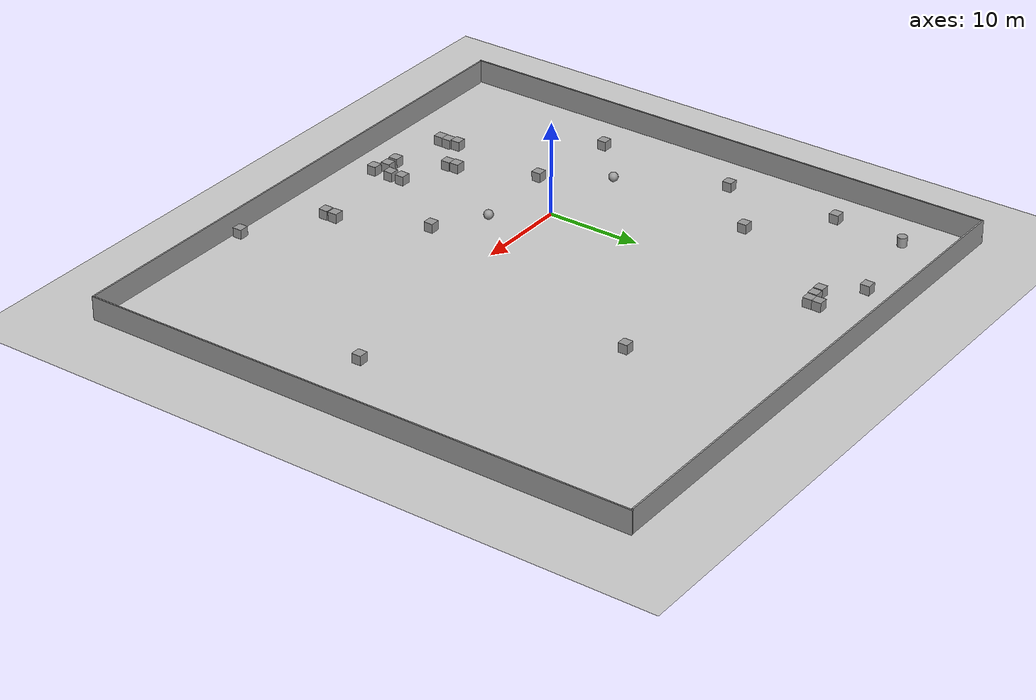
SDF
<sdf version="1.7">
 <world name="default">
  <plugin name="gazebo_ros_state" filename="libgazebo_ros_state.so"/>
  <light name="sun" type="directional">
   <pose>0 0 10 0 -0 0</pose>
   <diffuse>0.8 0.8 0.8 1</diffuse>
   <specular>0.2 0.2 0.2 1</specular>
   <attenuation>
    <range>1000</range>
    <constant>0.9</constant>
    <linear>0.01</linear>
    <quadratic>0.001</quadratic>
   </attenuation>
   <direction>-0.5 0.1 -0.9</direction>
   <spot><inner_angle>0</inner_angle><outer_angle>0</outer_angle><falloff>0</falloff></spot>
  </light>
  <model name="ground_plane">
   <static>1</static>
   <link name="link">
    <collision name="collision_collision">
     <geometry><plane><normal>0 0 1</normal><size>100 100</size></plane></geometry>
     <surface><friction><ode><mu>100</mu><mu2>50</mu2></ode></friction></surface>
    </collision>
    <visual name="visual">
     <cast_shadows>0</cast_shadows>
     <geometry><plane><normal>0 0 1</normal><size>100 100</size></plane></geometry>
     <material>
      <script><uri>file://media/materials/scripts/gazebo.material</uri><name>Gazebo/Grey</name></script>
     </material>
    </visual>
   </link>
  </model>
  <gravity>0 0 -9.81</gravity>
  <magnetic_field>6e-06 2.3e-05 -4.2e-05</magnetic_field>
  <atmosphere type="adiabatic"/>
  <physics type="ode">
   <max_step_size>0.001</max_step_size>
   <real_time_factor>1</real_time_factor>
   <real_time_update_rate>1000</real_time_update_rate>
  </physics>
  <scene><ambient>0.4 0.4 0.4 1</ambient><background>0.7 0.7 0.7 1</background><shadows>1</shadows></scene>
  <spherical_coordinates>
   <surface_model>EARTH_WGS84</surface_model>
   <latitude_deg>0</latitude_deg>
   <longitude_deg>0</longitude_deg>
   <elevation>0</elevation>
   <heading_deg>0</heading_deg>
  </spherical_coordinates>
  <model name="Untitled">
   <pose>10.7145 7.1314 -0.015294 0 -0 0</pose>
   <link name="Wall_0">
    <collision name="Wall_0_Collision_collision">
     <geometry><box><size>60 0.15 2.5</size></box></geometry>
     <pose>0 0 1.25 0 -0 0</pose>
    </collision>
    <visual name="Wall_0_Visual">
     <pose>0 0 1.25 0 -0 0</pose>
     <geometry><box><size>60 0.15 2.5</size></box></geometry>
     <material>
      <script><uri>file://media/materials/scripts/gazebo.material</uri><name>Gazebo/Grey</name></script>
      <ambient>1 1 1 1</ambient>
     </material>
     <meta><layer>0</layer></meta>
    </visual>
    <pose>-0.121886 29.8918 0 0 -0 0</pose>
   </link>
   <link name="Wall_11">
    <collision name="Wall_11_Collision_collision">
     <geometry><box><size>60 0.15 2.5</size></box></geometry>
     <pose>0 0 1.25 0 -0 0</pose>
    </collision>
    <visual name="Wall_11_Visual">
     <pose>0 0 1.25 0 -0 0</pose>
     <geometry><box><size>60 0.15 2.5</size></box></geometry>
     <material>
      <script><uri>file://media/materials/scripts/gazebo.material</uri><name>Gazebo/Grey</name></script>
      <ambient>1 1 1 1</ambient>
     </material>
     <meta><layer>0</layer></meta>
    </visual>
    <pose>30.0469 0.033205 0 0 -0 1.5708</pose>
   </link>
   <link name="Wall_7">
    <collision name="Wall_7_Collision_collision">
     <geometry><box><size>60 0.15 2.5</size></box></geometry>
     <pose>0 0 1.25 0 -0 0</pose>
    </collision>
    <visual name="Wall_7_Visual">
     <pose>0 0 1.25 0 -0 0</pose>
     <geometry><box><size>60 0.15 2.5</size></box></geometry>
     <material>
      <script><uri>file://media/materials/scripts/gazebo.material</uri><name>Gazebo/Grey</name></script>
      <ambient>1 1 1 1</ambient>
     </material>
     <meta><layer>0</layer></meta>
    </visual>
    <pose>-30.0469 -0.033202 0 0 -0 -1.5708</pose>
   </link>
   <link name="Wall_9">
    <collision name="Wall_9_Collision_collision">
     <geometry><box><size>60 0.15 2.5</size></box></geometry>
     <pose>0 0 1.25 0 -0 0</pose>
    </collision>
    <visual name="Wall_9_Visual">
     <pose>0 0 1.25 0 -0 0</pose>
     <geometry><box><size>60 0.15 2.5</size></box></geometry>
     <material>
      <script><uri>file://media/materials/scripts/gazebo.material</uri><name>Gazebo/Grey</name></script>
      <ambient>1 1 1 1</ambient>
     </material>
     <meta><layer>0</layer></meta>
    </visual>
    <pose>0.121884 -29.8918 0 0 -0 0</pose>
   </link>
   <static>1</static>
  </model>
  <model name="unit_sphere_1">
   <pose>4.31036 -4.4456 0.5 0 -0 0</pose>
   <link name="link">
    <inertial>
     <mass>1</mass>
     <inertia><ixx>0.1</ixx><ixy>0</ixy><ixz>0</ixz><iyy>0.1</iyy><iyz>0</iyz><izz>0.1</izz></inertia>
    </inertial>
    <collision name="collision_collision"><geometry><sphere><radius>0.5</radius></sphere></geometry></collision>
    <visual name="visual">
     <geometry><sphere><radius>0.5</radius></sphere></geometry>
     <material>
      <script><name>Gazebo/Grey</name><uri>file://media/materials/scripts/gazebo.material</uri></script>
     </material>
    </visual>
   </link>
  </model>
  <model name="unit_sphere_2">
   <pose>-9.12909 1.1262 0.5 0 -0 0</pose>
   <link name="link">
    <inertial>
     <mass>1</mass>
     <inertia><ixx>0.1</ixx><ixy>0</ixy><ixz>0</ixz><iyy>0.1</iyy><iyz>0</iyz><izz>0.1</izz></inertia>
    </inertial>
    <collision name="collision_collision"><geometry><sphere><radius>0.5</radius></sphere></geometry></collision>
    <visual name="visual">
     <geometry><sphere><radius>0.5</radius></sphere></geometry>
     <material>
      <script><name>Gazebo/Grey</name><uri>file://media/materials/scripts/gazebo.material</uri></script>
     </material>
    </visual>
   </link>
  </model>
  <light name="user_point_light_0" type="point">
   <pose>20.2734 97.7247 1 0 -0 0</pose>
   <diffuse>0.5 0.5 0.5 1</diffuse>
   <specular>0.1 0.1 0.1 1</specular>
   <attenuation>
    <range>20</range>
    <constant>0.5</constant>
    <linear>0.01</linear>
    <quadratic>0.001</quadratic>
   </attenuation>
   <cast_shadows>0</cast_shadows>
   <direction>0 0 -1</direction>
   <spot><inner_angle>0</inner_angle><outer_angle>0</outer_angle><falloff>0</falloff></spot>
  </light>
  <model name="unit_cylinder_3">
   <pose>-14.5126 31.061 0.499994 -1e-06 -0 -0</pose>
   <link name="link">
    <inertial>
     <mass>1</mass>
     <inertia><ixx>0.145833</ixx><ixy>0</ixy><ixz>0</ixz><iyy>0.145833</iyy><iyz>0</iyz><izz>0.125</izz></inertia>
    </inertial>
    <collision name="collision_collision">
     <geometry><cylinder><radius>0.5</radius><length>1</length></cylinder></geometry>
    </collision>
    <visual name="visual">
     <geometry><cylinder><radius>0.5</radius><length>1</length></cylinder></geometry>
     <material>
      <script><name>Gazebo/Grey</name><uri>file://media/materials/scripts/gazebo.material</uri></script>
     </material>
    </visual>
   </link>
  </model>
  <model name="unit_box_4">
   <pose>-4.84258 32.8582 0.5 0 -0 5e-06</pose>
   <link name="link">
    <inertial>
     <mass>1</mass>
     <inertia>
      <ixx>0.166667</ixx>
      <ixy>0</ixy>
      <ixz>0</ixz>
      <iyy>0.166667</iyy>
      <iyz>0</iyz>
      <izz>0.166667</izz>
     </inertia>
    </inertial>
    <collision name="collision_collision"><geometry><box><size>1 1 1</size></box></geometry></collision>
    <visual name="visual">
     <geometry><box><size>1 1 1</size></box></geometry>
     <material>
      <script><name>Gazebo/Grey</name><uri>file://media/materials/scripts/gazebo.material</uri></script>
     </material>
    </visual>
   </link>
  </model>
  <model name="unit_box_5">
   <pose>-14.836 23.4899 0.5 0 -0 0</pose>
   <link name="link">
    <inertial>
     <mass>1</mass>
     <inertia>
      <ixx>0.166667</ixx>
      <ixy>0</ixy>
      <ixz>0</ixz>
      <iyy>0.166667</iyy>
      <iyz>0</iyz>
      <izz>0.166667</izz>
     </inertia>
    </inertial>
    <collision name="collision_collision"><geometry><box><size>1 1 1</size></box></geometry></collision>
    <visual name="visual">
     <geometry><box><size>1 1 1</size></box></geometry>
     <material>
      <script><name>Gazebo/Grey</name><uri>file://media/materials/scripts/gazebo.material</uri></script>
     </material>
    </visual>
   </link>
  </model>
  <model name="unit_box_0">
   <pose>20.9581 -21.964 0.5 0 -0 0</pose>
   <link name="link">
    <inertial>
     <mass>1</mass>
     <inertia>
      <ixx>0.166667</ixx>
      <ixy>0</ixy>
      <ixz>0</ixz>
      <iyy>0.166667</iyy>
      <iyz>0</iyz>
      <izz>0.166667</izz>
     </inertia>
    </inertial>
    <collision name="collision_collision"><geometry><box><size>1 1 1</size></box></geometry></collision>
    <visual name="visual">
     <geometry><box><size>1 1 1</size></box></geometry>
     <material>
      <script><name>Gazebo/Grey</name><uri>file://media/materials/scripts/gazebo.material</uri></script>
     </material>
    </visual>
   </link>
  </model>
  <model name="unit_box_1">
   <pose>-5.57587 -17.7408 0.5 0 -0 -0.000396</pose>
   <link name="link">
    <inertial>
     <mass>1</mass>
     <inertia>
      <ixx>0.166667</ixx>
      <ixy>0</ixy>
      <ixz>0</ixz>
      <iyy>0.166667</iyy>
      <iyz>0</iyz>
      <izz>0.166667</izz>
     </inertia>
    </inertial>
    <collision name="collision_collision"><geometry><box><size>1 1 1</size></box></geometry></collision>
    <visual name="visual">
     <geometry><box><size>1 1 1</size></box></geometry>
     <material>
      <script><name>Gazebo/Grey</name><uri>file://media/materials/scripts/gazebo.material</uri></script>
     </material>
    </visual>
   </link>
  </model>
  <model name="unit_box_2">
   <pose>-5.5561 -16.7408 0.5 0 -0 -0.000396</pose>
   <link name="link">
    <inertial>
     <mass>1</mass>
     <inertia>
      <ixx>0.166667</ixx>
      <ixy>0</ixy>
      <ixz>0</ixz>
      <iyy>0.166667</iyy>
      <iyz>0</iyz>
      <izz>0.166667</izz>
     </inertia>
    </inertial>
    <collision name="collision_collision"><geometry><box><size>1 1 1</size></box></geometry></collision>
    <visual name="visual">
     <geometry><box><size>1 1 1</size></box></geometry>
     <material>
      <script><name>Gazebo/Grey</name><uri>file://media/materials/scripts/gazebo.material</uri></script>
     </material>
    </visual>
   </link>
  </model>
  <model name="unit_box_3">
   <pose>-5.76832 -15.7344 0.5 0 -0 0</pose>
   <link name="link">
    <inertial>
     <mass>1</mass>
     <inertia>
      <ixx>0.166667</ixx>
      <ixy>0</ixy>
      <ixz>0</ixz>
      <iyy>0.166667</iyy>
      <iyz>0</iyz>
      <izz>0.166667</izz>
     </inertia>
    </inertial>
    <collision name="collision_collision"><geometry><box><size>1 1 1</size></box></geometry></collision>
    <visual name="visual">
     <geometry><box><size>1 1 1</size></box></geometry>
     <material>
      <script><name>Gazebo/Grey</name><uri>file://media/materials/scripts/gazebo.material</uri></script>
     </material>
    </visual>
   </link>
  </model>
  <model name="unit_box_6">
   <pose>9.34774 -7.63924 0.5 0 -0 0</pose>
   <link name="link">
    <inertial>
     <mass>1</mass>
     <inertia>
      <ixx>0.166667</ixx>
      <ixy>0</ixy>
      <ixz>0</ixz>
      <iyy>0.166667</iyy>
      <iyz>0</iyz>
      <izz>0.166667</izz>
     </inertia>
    </inertial>
    <collision name="collision_collision"><geometry><box><size>1 1 1</size></box></geometry></collision>
    <visual name="visual">
     <geometry><box><size>1 1 1</size></box></geometry>
     <material>
      <script><name>Gazebo/Grey</name><uri>file://media/materials/scripts/gazebo.material</uri></script>
     </material>
    </visual>
   </link>
  </model>
  <model name="unit_box_7">
   <pose>17.0016 20.3296 0.5 0 -0 0</pose>
   <link name="link">
    <inertial>
     <mass>1</mass>
     <inertia>
      <ixx>0.166667</ixx>
      <ixy>0</ixy>
      <ixz>0</ixz>
      <iyy>0.166667</iyy>
      <iyz>0</iyz>
      <izz>0.166667</izz>
     </inertia>
    </inertial>
    <collision name="collision_collision"><geometry><box><size>1 1 1</size></box></geometry></collision>
    <visual name="visual">
     <geometry><box><size>1 1 1</size></box></geometry>
     <material>
      <script><name>Gazebo/Grey</name><uri>file://media/materials/scripts/gazebo.material</uri></script>
     </material>
    </visual>
   </link>
  </model>
  <model name="unit_box_9">
   <pose>-14.3635 11.4602 0.5 0 -0 0</pose>
   <link name="link">
    <inertial>
     <mass>1</mass>
     <inertia>
      <ixx>0.166667</ixx>
      <ixy>0</ixy>
      <ixz>0</ixz>
      <iyy>0.166667</iyy>
      <iyz>0</iyz>
      <izz>0.166667</izz>
     </inertia>
    </inertial>
    <collision name="collision_collision"><geometry><box><size>1 1 1</size></box></geometry></collision>
    <visual name="visual">
     <geometry><box><size>1 1 1</size></box></geometry>
     <material>
      <script><name>Gazebo/Grey</name><uri>file://media/materials/scripts/gazebo.material</uri></script>
     </material>
    </visual>
   </link>
  </model>
  <model name="unit_box_10">
   <pose>-8.12453 17.1739 0.5 0 -0 0</pose>
   <link name="link">
    <inertial>
     <mass>1</mass>
     <inertia>
      <ixx>0.166667</ixx>
      <ixy>0</ixy>
      <ixz>0</ixz>
      <iyy>0.166667</iyy>
      <iyz>0</iyz>
      <izz>0.166667</izz>
     </inertia>
    </inertial>
    <collision name="collision_collision"><geometry><box><size>1 1 1</size></box></geometry></collision>
    <visual name="visual">
     <geometry><box><size>1 1 1</size></box></geometry>
     <material>
      <script><name>Gazebo/Grey</name><uri>file://media/materials/scripts/gazebo.material</uri></script>
     </material>
    </visual>
   </link>
  </model>
  <model name="unit_box_8">
   <pose>-5.07963 -5.13868 0.5 0 -0 0</pose>
   <link name="link">
    <inertial>
     <mass>1</mass>
     <inertia>
      <ixx>0.166667</ixx>
      <ixy>0</ixy>
      <ixz>0</ixz>
      <iyy>0.166667</iyy>
      <iyz>0</iyz>
      <izz>0.166667</izz>
     </inertia>
    </inertial>
    <collision name="collision_collision"><geometry><box><size>1 1 1</size></box></geometry></collision>
    <visual name="visual">
     <geometry><box><size>1 1 1</size></box></geometry>
     <material>
      <script><name>Gazebo/Grey</name><uri>file://media/materials/scripts/gazebo.material</uri></script>
     </material>
    </visual>
   </link>
  </model>
  <model name="unit_box_11">
   <pose>-14.4213 -3.64772 0.5 0 -0 0</pose>
   <link name="link">
    <inertial>
     <mass>1</mass>
     <inertia>
      <ixx>0.166667</ixx>
      <ixy>0</ixy>
      <ixz>0</ixz>
      <iyy>0.166667</iyy>
      <iyz>0</iyz>
      <izz>0.166667</izz>
     </inertia>
    </inertial>
    <collision name="collision_collision"><geometry><box><size>1 1 1</size></box></geometry></collision>
    <visual name="visual">
     <geometry><box><size>1 1 1</size></box></geometry>
     <material>
      <script><name>Gazebo/Grey</name><uri>file://media/materials/scripts/gazebo.material</uri></script>
     </material>
    </visual>
   </link>
  </model>
  <model name="unit_box_12">
   <pose>32.4566 1.82533 0.5 0 -0 0</pose>
   <link name="link">
    <inertial>
     <mass>1</mass>
     <inertia>
      <ixx>0.166667</ixx>
      <ixy>0</ixy>
      <ixz>0</ixz>
      <iyy>0.166667</iyy>
      <iyz>0</iyz>
      <izz>0.166667</izz>
     </inertia>
    </inertial>
    <collision name="collision_collision"><geometry><box><size>1 1 1</size></box></geometry></collision>
    <visual name="visual">
     <geometry><box><size>1 1 1</size></box></geometry>
     <material>
      <script><name>Gazebo/Grey</name><uri>file://media/materials/scripts/gazebo.material</uri></script>
     </material>
    </visual>
   </link>
  </model>
  <model name="unit_box_6_clone">
   <pose>3.36847 -19.3496 0.5 0 -0 0</pose>
   <link name="link">
    <inertial>
     <mass>1</mass>
     <inertia>
      <ixx>0.166667</ixx>
      <ixy>0</ixy>
      <ixz>0</ixz>
      <iyy>0.166667</iyy>
      <iyz>0</iyz>
      <izz>0.166667</izz>
     </inertia>
    </inertial>
    <collision name="collision_collision"><geometry><box><size>1 1 1</size></box></geometry></collision>
    <visual name="visual">
     <geometry><box><size>1 1 1</size></box></geometry>
     <material>
      <script><name>Gazebo/Grey</name><uri>file://media/materials/scripts/gazebo.material</uri></script>
     </material>
    </visual>
   </link>
  </model>
  <model name="unit_box_6_clone_0">
   <pose>3.38368 -17.2486 0.5 0 -0 0</pose>
   <link name="link">
    <inertial>
     <mass>1</mass>
     <inertia>
      <ixx>0.166667</ixx>
      <ixy>0</ixy>
      <ixz>0</ixz>
      <iyy>0.166667</iyy>
      <iyz>0</iyz>
      <izz>0.166667</izz>
     </inertia>
    </inertial>
    <collision name="collision_collision"><geometry><box><size>1 1 1</size></box></geometry></collision>
    <visual name="visual">
     <geometry><box><size>1 1 1</size></box></geometry>
     <material>
      <script><name>Gazebo/Grey</name><uri>file://media/materials/scripts/gazebo.material</uri></script>
     </material>
    </visual>
   </link>
  </model>
  <model name="unit_box_6_clone_1">
   <pose>3.35752 -15.8519 0.5 0 -0 0</pose>
   <link name="link">
    <inertial>
     <mass>1</mass>
     <inertia>
      <ixx>0.166667</ixx>
      <ixy>0</ixy>
      <ixz>0</ixz>
      <iyy>0.166667</iyy>
      <iyz>0</iyz>
      <izz>0.166667</izz>
     </inertia>
    </inertial>
    <collision name="collision_collision"><geometry><box><size>1 1 1</size></box></geometry></collision>
    <visual name="visual">
     <geometry><box><size>1 1 1</size></box></geometry>
     <material>
      <script><name>Gazebo/Grey</name><uri>file://media/materials/scripts/gazebo.material</uri></script>
     </material>
    </visual>
   </link>
  </model>
  <model name="unit_box_6_clone_2">
   <pose>13.2207 -17.562 0.5 0 -0 0</pose>
   <link name="link">
    <inertial>
     <mass>1</mass>
     <inertia>
      <ixx>0.166667</ixx>
      <ixy>0</ixy>
      <ixz>0</ixz>
      <iyy>0.166667</iyy>
      <iyz>0</iyz>
      <izz>0.166667</izz>
     </inertia>
    </inertial>
    <collision name="collision_collision"><geometry><box><size>1 1 1</size></box></geometry></collision>
    <visual name="visual">
     <geometry><box><size>1 1 1</size></box></geometry>
     <material>
      <script><name>Gazebo/Grey</name><uri>file://media/materials/scripts/gazebo.material</uri></script>
     </material>
    </visual>
   </link>
  </model>
  <model name="unit_box_6_clone_3">
   <pose>13.2072 -16.4536 0.5 0 -0 0</pose>
   <link name="link">
    <inertial>
     <mass>1</mass>
     <inertia>
      <ixx>0.166667</ixx>
      <ixy>0</ixy>
      <ixz>0</ixz>
      <iyy>0.166667</iyy>
      <iyz>0</iyz>
      <izz>0.166667</izz>
     </inertia>
    </inertial>
    <collision name="collision_collision"><geometry><box><size>1 1 1</size></box></geometry></collision>
    <visual name="visual">
     <geometry><box><size>1 1 1</size></box></geometry>
     <material>
      <script><name>Gazebo/Grey</name><uri>file://media/materials/scripts/gazebo.material</uri></script>
     </material>
    </visual>
   </link>
  </model>
  <model name="unit_box_4_clone">
   <pose>0.41455 29.7469 0.5 0 -0 6e-06</pose>
   <link name="link">
    <inertial>
     <mass>1</mass>
     <inertia>
      <ixx>0.166667</ixx>
      <ixy>0</ixy>
      <ixz>0</ixz>
      <iyy>0.166667</iyy>
      <iyz>0</iyz>
      <izz>0.166667</izz>
     </inertia>
    </inertial>
    <collision name="collision_collision"><geometry><box><size>1 1 1</size></box></geometry></collision>
    <visual name="visual">
     <geometry><box><size>1 1 1</size></box></geometry>
     <material>
      <script><name>Gazebo/Grey</name><uri>file://media/materials/scripts/gazebo.material</uri></script>
     </material>
    </visual>
   </link>
  </model>
  <model name="unit_box_4_clone_0">
   <pose>-0.664324 29.6529 0.5 0 -0 5e-06</pose>
   <link name="link">
    <inertial>
     <mass>1</mass>
     <inertia>
      <ixx>0.166667</ixx>
      <ixy>0</ixy>
      <ixz>0</ixz>
      <iyy>0.166667</iyy>
      <iyz>0</iyz>
      <izz>0.166667</izz>
     </inertia>
    </inertial>
    <collision name="collision_collision"><geometry><box><size>1 1 1</size></box></geometry></collision>
    <visual name="visual">
     <geometry><box><size>1 1 1</size></box></geometry>
     <material>
      <script><name>Gazebo/Grey</name><uri>file://media/materials/scripts/gazebo.material</uri></script>
     </material>
    </visual>
   </link>
  </model>
  <model name="unit_box_4_clone_1">
   <pose>-1.75751 29.589 0.5 0 -0 5e-06</pose>
   <link name="link">
    <inertial>
     <mass>1</mass>
     <inertia>
      <ixx>0.166667</ixx>
      <ixy>0</ixy>
      <ixz>0</ixz>
      <iyy>0.166667</iyy>
      <iyz>0</iyz>
      <izz>0.166667</izz>
     </inertia>
    </inertial>
    <collision name="collision_collision"><geometry><box><size>1 1 1</size></box></geometry></collision>
    <visual name="visual">
     <geometry><box><size>1 1 1</size></box></geometry>
     <material>
      <script><name>Gazebo/Grey</name><uri>file://media/materials/scripts/gazebo.material</uri></script>
     </material>
    </visual>
   </link>
  </model>
  <model name="unit_box_4_clone_2">
   <pose>0.414628 30.7469 0.5 0 -0 6e-06</pose>
   <link name="link">
    <inertial>
     <mass>1</mass>
     <inertia>
      <ixx>0.166667</ixx>
      <ixy>0</ixy>
      <ixz>0</ixz>
      <iyy>0.166667</iyy>
      <iyz>0</iyz>
      <izz>0.166667</izz>
     </inertia>
    </inertial>
    <collision name="collision_collision"><geometry><box><size>1 1 1</size></box></geometry></collision>
    <visual name="visual">
     <geometry><box><size>1 1 1</size></box></geometry>
     <material>
      <script><name>Gazebo/Grey</name><uri>file://media/materials/scripts/gazebo.material</uri></script>
     </material>
    </visual>
   </link>
  </model>
  <model name="unit_box_4_clone_3">
   <pose>-1.82703 -12.93 0.5 0 -0 5e-06</pose>
   <link name="link">
    <inertial>
     <mass>1</mass>
     <inertia>
      <ixx>0.166667</ixx>
      <ixy>0</ixy>
      <ixz>0</ixz>
      <iyy>0.166667</iyy>
      <iyz>0</iyz>
      <izz>0.166667</izz>
     </inertia>
    </inertial>
    <collision name="collision_collision"><geometry><box><size>1 1 1</size></box></geometry></collision>
    <visual name="visual">
     <geometry><box><size>1 1 1</size></box></geometry>
     <material>
      <script><name>Gazebo/Grey</name><uri>file://media/materials/scripts/gazebo.material</uri></script>
     </material>
    </visual>
   </link>
  </model>
  <model name="unit_box_4_clone_4">
   <pose>-1.70854 -13.9336 0.499996 0 -8e-06 0</pose>
   <link name="link">
    <inertial>
     <mass>1</mass>
     <inertia>
      <ixx>0.166667</ixx>
      <ixy>0</ixy>
      <ixz>0</ixz>
      <iyy>0.166667</iyy>
      <iyz>0</iyz>
      <izz>0.166667</izz>
     </inertia>
    </inertial>
    <collision name="collision_collision"><geometry><box><size>1 1 1</size></box></geometry></collision>
    <visual name="visual">
     <geometry><box><size>1 1 1</size></box></geometry>
     <material>
      <script><name>Gazebo/Grey</name><uri>file://media/materials/scripts/gazebo.material</uri></script>
     </material>
    </visual>
   </link>
  </model>
  <model name="unit_box">
   <pose>2.08718 -18.5714 0.5 -0 -0 -0</pose>
   <link name="link">
    <inertial>
     <mass>1</mass>
     <inertia>
      <ixx>0.166667</ixx>
      <ixy>0</ixy>
      <ixz>0</ixz>
      <iyy>0.166667</iyy>
      <iyz>0</iyz>
      <izz>0.166667</izz>
     </inertia>
    </inertial>
    <collision name="collision_collision"><geometry><box><size>1 1 1</size></box></geometry></collision>
    <visual name="visual">
     <geometry><box><size>1 1 1</size></box></geometry>
     <material>
      <script><name>Gazebo/Grey</name><uri>file://media/materials/scripts/gazebo.material</uri></script>
     </material>
    </visual>
   </link>
  </model>
  <model name="unit_box_13">
   <pose>0.765995 -18.6264 0.5 -0 -0 -0</pose>
   <link name="link">
    <inertial>
     <mass>1</mass>
     <inertia>
      <ixx>0.166667</ixx>
      <ixy>0</ixy>
      <ixz>0</ixz>
      <iyy>0.166667</iyy>
      <iyz>0</iyz>
      <izz>0.166667</izz>
     </inertia>
    </inertial>
    <collision name="collision_collision"><geometry><box><size>1 1 1</size></box></geometry></collision>
    <visual name="visual">
     <geometry><box><size>1 1 1</size></box></geometry>
     <material>
      <script><name>Gazebo/Grey</name><uri>file://media/materials/scripts/gazebo.material</uri></script>
     </material>
    </visual>
   </link>
  </model>
 </world>
</sdf>
